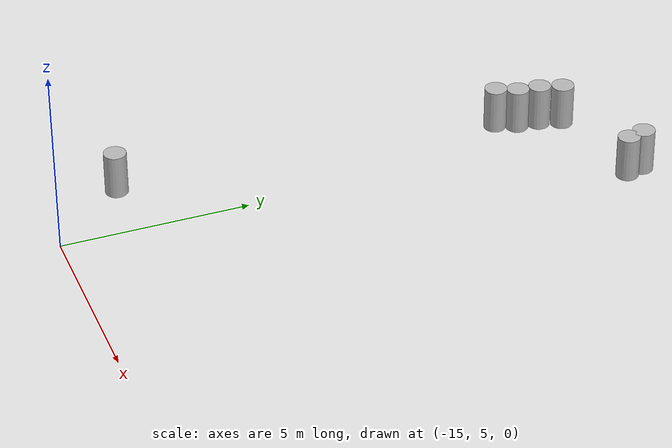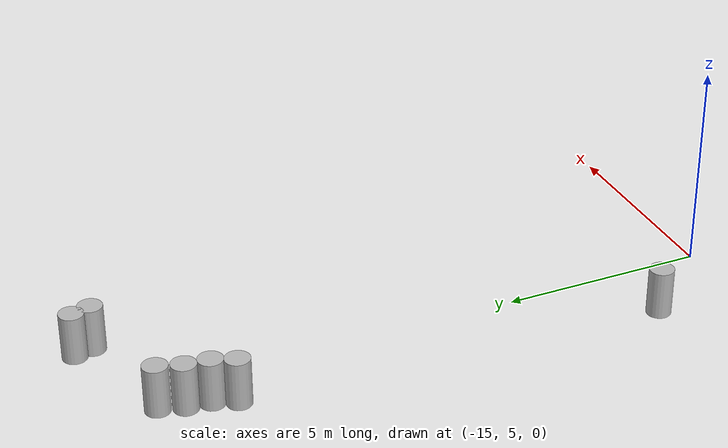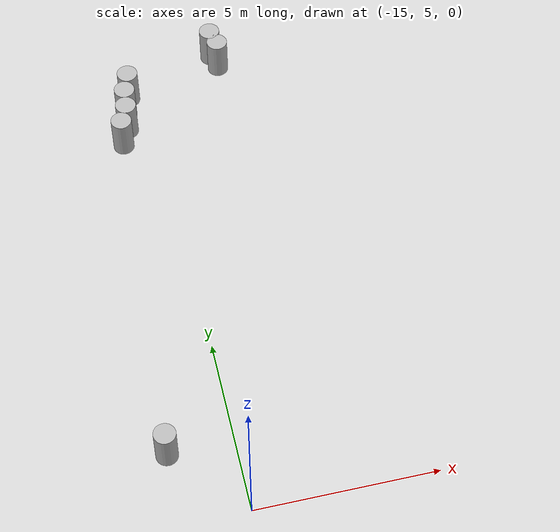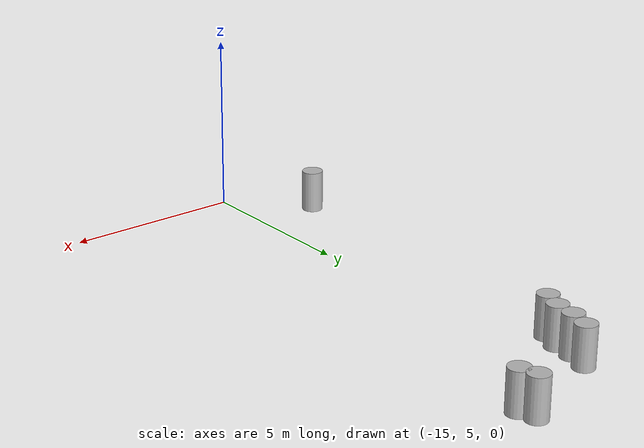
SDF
<sdf version="1.6">
 <world name="default">
  <model name="Construction Barrel_clone_clone_clone_31">
   <link name="link">
    <inertial>
     <pose>0 0 0.5 0 -0 0</pose>
     <mass>500</mass>
     <inertia><ixx>51.2096</ixx><iyy>51.2096</iyy><izz>25</izz><ixy>0</ixy><ixz>0</ixz><iyz>0</iyz></inertia>
    </inertial>
    <collision name="collision">
     <geometry><cylinder><radius>0.3</radius><length>1.2</length></cylinder></geometry>
    </collision>
    <visual name="visual">
     <geometry><cylinder><radius>0.3</radius><length>1.2</length></cylinder></geometry>
     <material>
      <script>
       <uri>model://construction_barrel/materials/scripts</uri>
       <uri>model://construction_barrel/materials/textures</uri>
       <name>construction_barrel/Image</name>
      </script>
     </material>
    </visual>
    <velocity_decay><linear>0</linear><angular>0</angular></velocity_decay>
   </link>
   <pose>-12.9403 20.1167 0.613748 0 -0 0</pose>
   <static>1</static>
  </model>
  <model name="Construction Barrel_clone_clone_clone_32">
   <link name="link">
    <inertial>
     <pose>0 0 0.5 0 -0 0</pose>
     <mass>500</mass>
     <inertia><ixx>51.2096</ixx><iyy>51.2096</iyy><izz>25</izz><ixy>0</ixy><ixz>0</ixz><iyz>0</iyz></inertia>
    </inertial>
    <collision name="collision">
     <geometry><cylinder><radius>0.3</radius><length>1.2</length></cylinder></geometry>
    </collision>
    <visual name="visual">
     <geometry><cylinder><radius>0.3</radius><length>1.2</length></cylinder></geometry>
     <material>
      <script>
       <uri>model://construction_barrel/materials/scripts</uri>
       <uri>model://construction_barrel/materials/textures</uri>
       <name>construction_barrel/Image</name>
      </script>
     </material>
    </visual>
    <velocity_decay><linear>0</linear><angular>0</angular></velocity_decay>
   </link>
   <pose>-12.8047 19.6406 0.613748 0 -0 0</pose>
   <static>1</static>
  </model>
  <model name="Construction Barrel_clone_clone_clone_34">
   <link name="link">
    <inertial>
     <pose>0 0 0.5 0 -0 0</pose>
     <mass>500</mass>
     <inertia><ixx>51.2096</ixx><iyy>51.2096</iyy><izz>25</izz><ixy>0</ixy><ixz>0</ixz><iyz>0</iyz></inertia>
    </inertial>
    <collision name="collision">
     <geometry><cylinder><radius>0.3</radius><length>1.2</length></cylinder></geometry>
    </collision>
    <visual name="visual">
     <geometry><cylinder><radius>0.3</radius><length>1.2</length></cylinder></geometry>
     <material>
      <script>
       <uri>model://construction_barrel/materials/scripts</uri>
       <uri>model://construction_barrel/materials/textures</uri>
       <name>construction_barrel/Image</name>
      </script>
     </material>
    </visual>
    <velocity_decay><linear>0</linear><angular>0</angular></velocity_decay>
   </link>
   <pose>-16.1139 17.3103 0.613748 0 -0 0</pose>
   <static>1</static>
  </model>
  <model name="Construction Barrel_clone_clone_clone_35">
   <link name="link">
    <inertial>
     <pose>0 0 0.5 0 -0 0</pose>
     <mass>500</mass>
     <inertia><ixx>51.2096</ixx><iyy>51.2096</iyy><izz>25</izz><ixy>0</ixy><ixz>0</ixz><iyz>0</iyz></inertia>
    </inertial>
    <collision name="collision">
     <geometry><cylinder><radius>0.3</radius><length>1.2</length></cylinder></geometry>
    </collision>
    <visual name="visual">
     <geometry><cylinder><radius>0.3</radius><length>1.2</length></cylinder></geometry>
     <material>
      <script>
       <uri>model://construction_barrel/materials/scripts</uri>
       <uri>model://construction_barrel/materials/textures</uri>
       <name>construction_barrel/Image</name>
      </script>
     </material>
    </visual>
    <velocity_decay><linear>0</linear><angular>0</angular></velocity_decay>
   </link>
   <pose>-15.8894 17.8529 0.613748 0 -0 0</pose>
   <static>1</static>
  </model>
  <model name="Construction Barrel_clone_clone_clone_36">
   <link name="link">
    <inertial>
     <pose>0 0 0.5 0 -0 0</pose>
     <mass>500</mass>
     <inertia><ixx>51.2096</ixx><iyy>51.2096</iyy><izz>25</izz><ixy>0</ixy><ixz>0</ixz><iyz>0</iyz></inertia>
    </inertial>
    <collision name="collision">
     <geometry><cylinder><radius>0.3</radius><length>1.2</length></cylinder></geometry>
    </collision>
    <visual name="visual">
     <geometry><cylinder><radius>0.3</radius><length>1.2</length></cylinder></geometry>
     <material>
      <script>
       <uri>model://construction_barrel/materials/scripts</uri>
       <uri>model://construction_barrel/materials/textures</uri>
       <name>construction_barrel/Image</name>
      </script>
     </material>
    </visual>
    <velocity_decay><linear>0</linear><angular>0</angular></velocity_decay>
   </link>
   <pose>-15.8238 18.4427 0.613748 0 -0 0</pose>
   <static>1</static>
  </model>
  <model name="Construction Barrel_clone_clone_clone_37">
   <link name="link">
    <inertial>
     <pose>0 0 0.5 0 -0 0</pose>
     <mass>500</mass>
     <inertia><ixx>51.2096</ixx><iyy>51.2096</iyy><izz>25</izz><ixy>0</ixy><ixz>0</ixz><iyz>0</iyz></inertia>
    </inertial>
    <collision name="collision">
     <geometry><cylinder><radius>0.3</radius><length>1.2</length></cylinder></geometry>
    </collision>
    <visual name="visual">
     <geometry><cylinder><radius>0.3</radius><length>1.2</length></cylinder></geometry>
     <material>
      <script>
       <uri>model://construction_barrel/materials/scripts</uri>
       <uri>model://construction_barrel/materials/textures</uri>
       <name>construction_barrel/Image</name>
      </script>
     </material>
    </visual>
    <velocity_decay><linear>0</linear><angular>0</angular></velocity_decay>
   </link>
   <pose>-15.6346 19.0303 0.613748 0 -0 0</pose>
   <static>1</static>
  </model>
  <model name="Construction Barrel_clone_clone_clone_52">
   <link name="link">
    <inertial>
     <pose>0 0 0.5 0 -0 0</pose>
     <mass>500</mass>
     <inertia><ixx>51.2096</ixx><iyy>51.2096</iyy><izz>25</izz><ixy>0</ixy><ixz>0</ixz><iyz>0</iyz></inertia>
    </inertial>
    <collision name="collision">
     <geometry><cylinder><radius>0.3</radius><length>1.2</length></cylinder></geometry>
    </collision>
    <visual name="visual">
     <geometry><cylinder><radius>0.3</radius><length>1.2</length></cylinder></geometry>
     <material>
      <script>
       <uri>model://construction_barrel/materials/scripts</uri>
       <uri>model://construction_barrel/materials/textures</uri>
       <name>construction_barrel/Image</name>
      </script>
     </material>
    </visual>
    <velocity_decay><linear>0</linear><angular>0</angular></velocity_decay>
   </link>
   <pose>-16.7959 7.02033 0.613748 0 -0 0</pose>
   <static>1</static>
  </model>
 </world>
</sdf>
